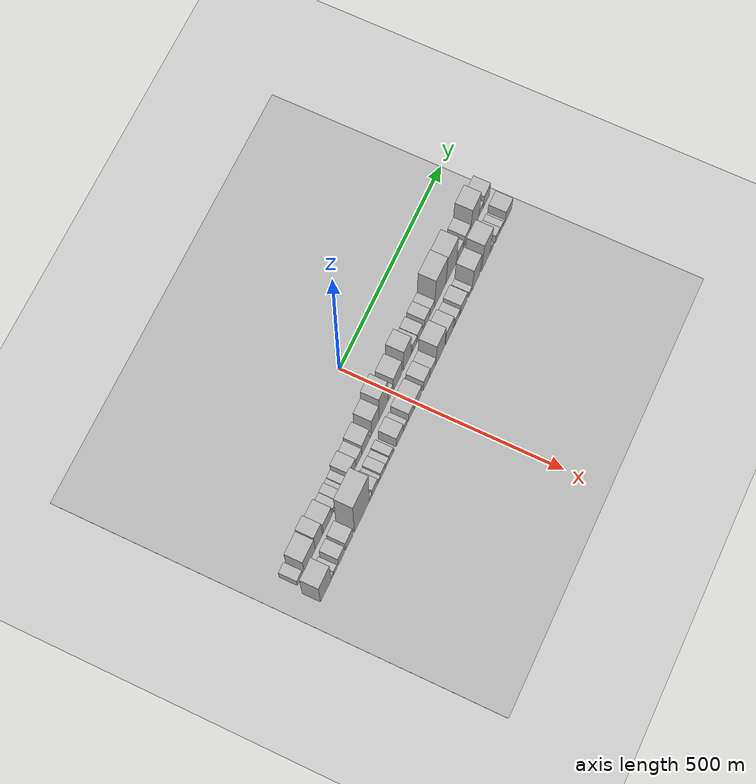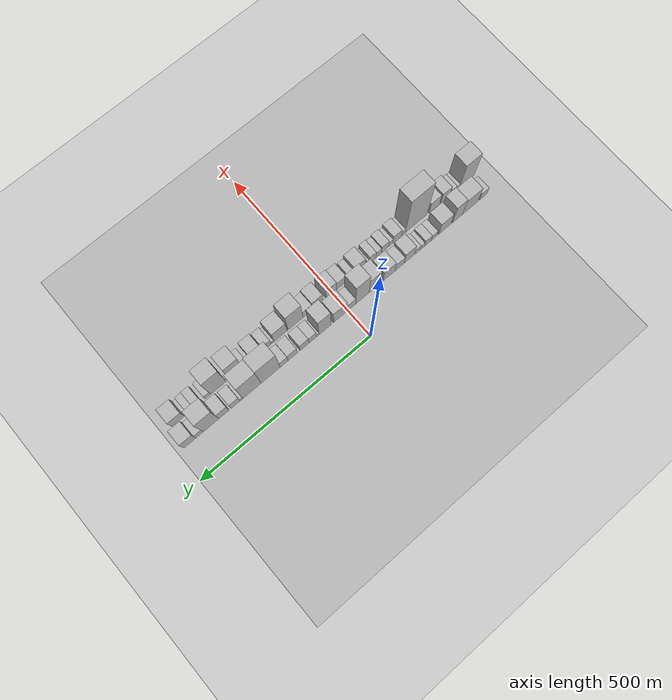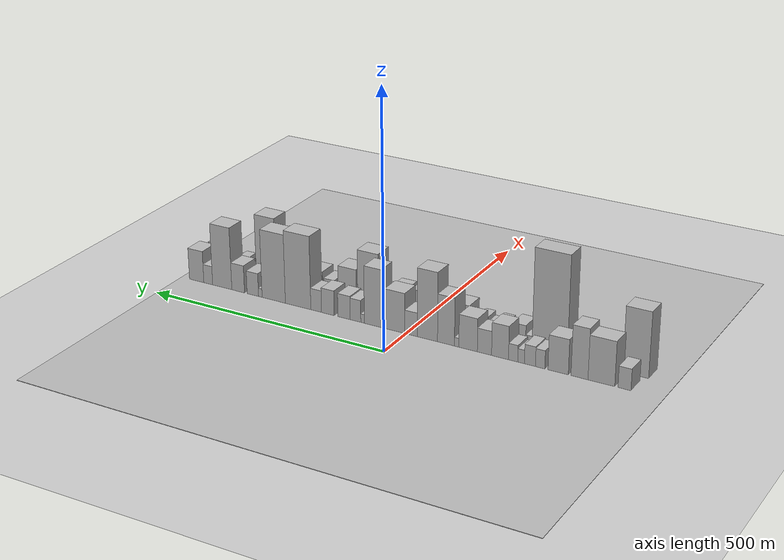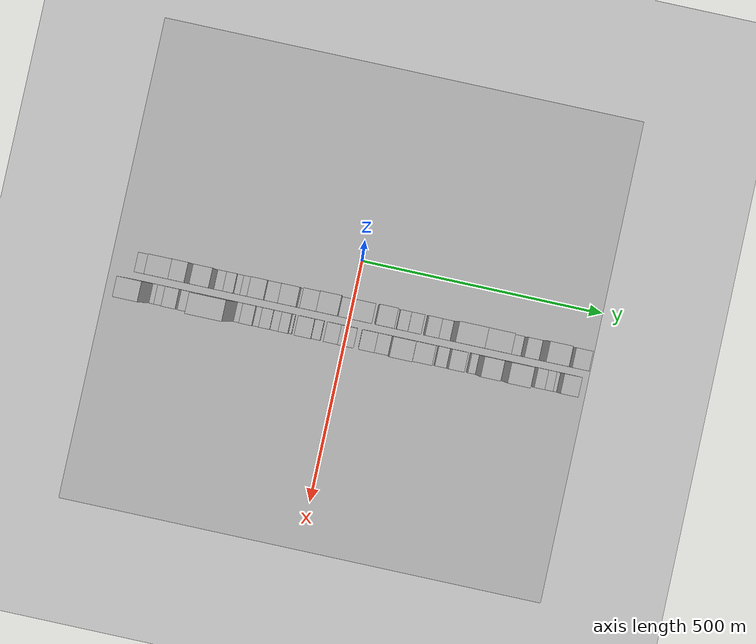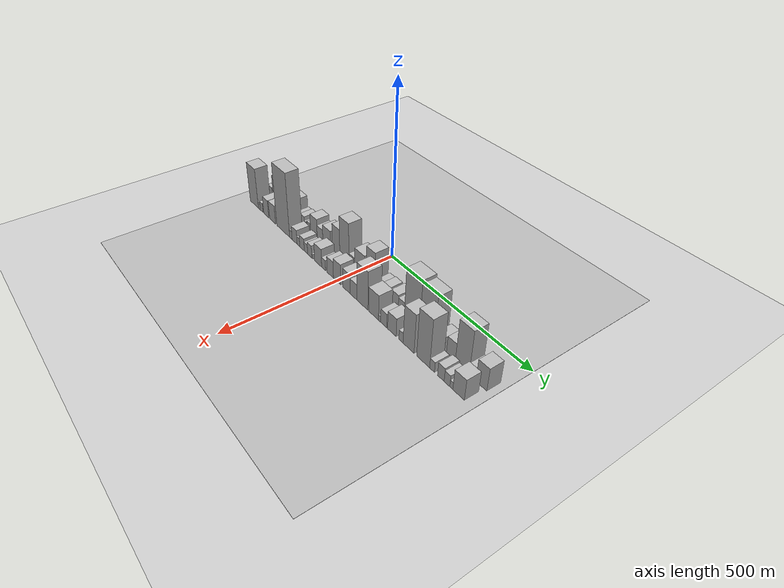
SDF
<sdf version="1.6">
 <world name="default">
  <include><name>ground_plane_1</name><uri>model://HANNAS_ground_plane</uri></include>
  <include>
   <name>ground_plane_2</name>
   <uri>model://HANNAS_ground_plane</uri>
   <pose>100 0 0  0 0 0</pose>
  </include>
  <model name="building_1">
   <static>1</static>
   <pose>100.0000 -428.0679 0 0.000000 0.000000 0.000000</pose>
   <link name="link">
    <pose>0 0 21.00 0 0 0</pose>
    <collision name="collision"><geometry><box><size>40.0000 23.8642 42.0000</size></box></geometry></collision>
    <visual name="visual">
     <cast_shadows>0</cast_shadows>
     <geometry><box><size>40.0000 23.8642 42.0000</size></box></geometry>
     <material>
      <script>
       <uri>model://HANNAS_wall/materials/scripts</uri>
       <uri>model://HANNAS_wall/materials/textures</uri>
       <name>vrc/HANNAS_wall</name>
      </script>
     </material>
    </visual>
   </link>
  </model>
  <model name="building_2">
   <static>1</static>
   <pose>100.0000 -385.1828 0 0.000000 0.000000 0.000000</pose>
   <link name="link">
    <pose>0 0 43.50 0 0 0</pose>
    <collision name="collision"><geometry><box><size>40.0000 49.9060 87.0000</size></box></geometry></collision>
    <visual name="visual">
     <cast_shadows>0</cast_shadows>
     <geometry><box><size>40.0000 49.9060 87.0000</size></box></geometry>
     <material>
      <script>
       <uri>model://HANNAS_wall/materials/scripts</uri>
       <uri>model://HANNAS_wall/materials/textures</uri>
       <name>vrc/HANNAS_wall</name>
      </script>
     </material>
    </visual>
   </link>
  </model>
  <model name="building_3">
   <static>1</static>
   <pose>100.0000 -344.1812 0 0.000000 0.000000 0.000000</pose>
   <link name="link">
    <pose>0 0 49.50 0 0 0</pose>
    <collision name="collision"><geometry><box><size>40.0000 32.0972 99.0000</size></box></geometry></collision>
    <visual name="visual">
     <cast_shadows>0</cast_shadows>
     <geometry><box><size>40.0000 32.0972 99.0000</size></box></geometry>
     <material>
      <script>
       <uri>model://HANNAS_wall/materials/scripts</uri>
       <uri>model://HANNAS_wall/materials/textures</uri>
       <name>vrc/HANNAS_wall</name>
      </script>
     </material>
    </visual>
   </link>
  </model>
  <model name="building_4">
   <static>1</static>
   <pose>100.0000 -303.6838 0 0.000000 0.000000 0.000000</pose>
   <link name="link">
    <pose>0 0 34.50 0 0 0</pose>
    <collision name="collision"><geometry><box><size>40.0000 38.8975 69.0000</size></box></geometry></collision>
    <visual name="visual">
     <cast_shadows>0</cast_shadows>
     <geometry><box><size>40.0000 38.8975 69.0000</size></box></geometry>
     <material>
      <script>
       <uri>model://HANNAS_wall/materials/scripts</uri>
       <uri>model://HANNAS_wall/materials/textures</uri>
       <name>vrc/HANNAS_wall</name>
      </script>
     </material>
    </visual>
   </link>
  </model>
  <model name="building_5">
   <static>1</static>
   <pose>100.0000 -269.1361 0 0.000000 0.000000 0.000000</pose>
   <link name="link">
    <pose>0 0 18.00 0 0 0</pose>
    <collision name="collision"><geometry><box><size>40.0000 18.1979 36.0000</size></box></geometry></collision>
    <visual name="visual">
     <cast_shadows>0</cast_shadows>
     <geometry><box><size>40.0000 18.1979 36.0000</size></box></geometry>
     <material>
      <script>
       <uri>model://HANNAS_wall/materials/scripts</uri>
       <uri>model://HANNAS_wall/materials/textures</uri>
       <name>vrc/HANNAS_wall</name>
      </script>
     </material>
    </visual>
   </link>
  </model>
  <model name="building_6">
   <static>1</static>
   <pose>100.0000 -249.3379 0 0.000000 0.000000 0.000000</pose>
   <link name="link">
    <pose>0 0 19.50 0 0 0</pose>
    <collision name="collision"><geometry><box><size>40.0000 21.3986 39.0000</size></box></geometry></collision>
    <visual name="visual">
     <cast_shadows>0</cast_shadows>
     <geometry><box><size>40.0000 21.3986 39.0000</size></box></geometry>
     <material>
      <script>
       <uri>model://HANNAS_wall/materials/scripts</uri>
       <uri>model://HANNAS_wall/materials/textures</uri>
       <name>vrc/HANNAS_wall</name>
      </script>
     </material>
    </visual>
   </link>
  </model>
  <model name="building_7">
   <static>1</static>
   <pose>100.0000 -232.1086 0 0.000000 0.000000 0.000000</pose>
   <link name="link">
    <pose>0 0 13.50 0 0 0</pose>
    <collision name="collision"><geometry><box><size>40.0000 13.0601 27.0000</size></box></geometry></collision>
    <visual name="visual">
     <cast_shadows>0</cast_shadows>
     <geometry><box><size>40.0000 13.0601 27.0000</size></box></geometry>
     <material>
      <script>
       <uri>model://HANNAS_wall/materials/scripts</uri>
       <uri>model://HANNAS_wall/materials/textures</uri>
       <name>vrc/HANNAS_wall</name>
      </script>
     </material>
    </visual>
   </link>
  </model>
  <model name="building_8">
   <static>1</static>
   <pose>100.0000 -216.5394 0 0.000000 0.000000 0.000000</pose>
   <link name="link">
    <pose>0 0 16.50 0 0 0</pose>
    <collision name="collision"><geometry><box><size>40.0000 18.0782 33.0000</size></box></geometry></collision>
    <visual name="visual">
     <cast_shadows>0</cast_shadows>
     <geometry><box><size>40.0000 18.0782 33.0000</size></box></geometry>
     <material>
      <script>
       <uri>model://HANNAS_wall/materials/scripts</uri>
       <uri>model://HANNAS_wall/materials/textures</uri>
       <name>vrc/HANNAS_wall</name>
      </script>
     </material>
    </visual>
   </link>
  </model>
  <model name="building_9">
   <static>1</static>
   <pose>100.0000 -190.8295 0 0.000000 0.000000 0.000000</pose>
   <link name="link">
    <pose>0 0 33.00 0 0 0</pose>
    <collision name="collision"><geometry><box><size>40.0000 33.3417 66.0000</size></box></geometry></collision>
    <visual name="visual">
     <cast_shadows>0</cast_shadows>
     <geometry><box><size>40.0000 33.3417 66.0000</size></box></geometry>
     <material>
      <script>
       <uri>model://HANNAS_wall/materials/scripts</uri>
       <uri>model://HANNAS_wall/materials/textures</uri>
       <name>vrc/HANNAS_wall</name>
      </script>
     </material>
    </visual>
   </link>
  </model>
  <model name="building_10">
   <static>1</static>
   <pose>100.0000 -159.9764 0 0.000000 0.000000 0.000000</pose>
   <link name="link">
    <pose>0 0 24.00 0 0 0</pose>
    <collision name="collision"><geometry><box><size>40.0000 28.3645 48.0000</size></box></geometry></collision>
    <visual name="visual">
     <cast_shadows>0</cast_shadows>
     <geometry><box><size>40.0000 28.3645 48.0000</size></box></geometry>
     <material>
      <script>
       <uri>model://HANNAS_wall/materials/scripts</uri>
       <uri>model://HANNAS_wall/materials/textures</uri>
       <name>vrc/HANNAS_wall</name>
      </script>
     </material>
    </visual>
   </link>
  </model>
  <model name="building_11">
   <static>1</static>
   <pose>100.0000 -127.2238 0 0.000000 0.000000 0.000000</pose>
   <link name="link">
    <pose>0 0 33.00 0 0 0</pose>
    <collision name="collision"><geometry><box><size>40.0000 37.1406 66.0000</size></box></geometry></collision>
    <visual name="visual">
     <cast_shadows>0</cast_shadows>
     <geometry><box><size>40.0000 37.1406 66.0000</size></box></geometry>
     <material>
      <script>
       <uri>model://HANNAS_wall/materials/scripts</uri>
       <uri>model://HANNAS_wall/materials/textures</uri>
       <name>vrc/HANNAS_wall</name>
      </script>
     </material>
    </visual>
   </link>
  </model>
  <model name="building_12">
   <static>1</static>
   <pose>100.0000 -104.2451 0 0.000000 0.000000 0.000000</pose>
   <link name="link">
    <pose>0 0 9.00 0 0 0</pose>
    <collision name="collision"><geometry><box><size>40.0000 8.8168 18.0000</size></box></geometry></collision>
    <visual name="visual">
     <cast_shadows>0</cast_shadows>
     <geometry><box><size>40.0000 8.8168 18.0000</size></box></geometry>
     <material>
      <script>
       <uri>model://HANNAS_wall/materials/scripts</uri>
       <uri>model://HANNAS_wall/materials/textures</uri>
       <name>vrc/HANNAS_wall</name>
      </script>
     </material>
    </visual>
   </link>
  </model>
  <model name="building_13">
   <static>1</static>
   <pose>100.0000 -82.5706 0 0.000000 0.000000 0.000000</pose>
   <link name="link">
    <pose>0 0 48.00 0 0 0</pose>
    <collision name="collision"><geometry><box><size>40.0000 34.5321 96.0000</size></box></geometry></collision>
    <visual name="visual">
     <cast_shadows>0</cast_shadows>
     <geometry><box><size>40.0000 34.5321 96.0000</size></box></geometry>
     <material>
      <script>
       <uri>model://HANNAS_wall/materials/scripts</uri>
       <uri>model://HANNAS_wall/materials/textures</uri>
       <name>vrc/HANNAS_wall</name>
      </script>
     </material>
    </visual>
   </link>
  </model>
  <model name="building_14">
   <static>1</static>
   <pose>100.0000 -44.4450 0 0.000000 0.000000 0.000000</pose>
   <link name="link">
    <pose>0 0 69.00 0 0 0</pose>
    <collision name="collision"><geometry><box><size>40.0000 41.7192 138.0000</size></box></geometry></collision>
    <visual name="visual">
     <cast_shadows>0</cast_shadows>
     <geometry><box><size>40.0000 41.7192 138.0000</size></box></geometry>
     <material>
      <script>
       <uri>model://HANNAS_wall/materials/scripts</uri>
       <uri>model://HANNAS_wall/materials/textures</uri>
       <name>vrc/HANNAS_wall</name>
      </script>
     </material>
    </visual>
   </link>
  </model>
  <model name="building_15">
   <static>1</static>
   <pose>100.0000 -10.7258 0 0.000000 0.000000 0.000000</pose>
   <link name="link">
    <pose>0 0 24.00 0 0 0</pose>
    <collision name="collision"><geometry><box><size>40.0000 25.7191 48.0000</size></box></geometry></collision>
    <visual name="visual">
     <cast_shadows>0</cast_shadows>
     <geometry><box><size>40.0000 25.7191 48.0000</size></box></geometry>
     <material>
      <script>
       <uri>model://HANNAS_wall/materials/scripts</uri>
       <uri>model://HANNAS_wall/materials/textures</uri>
       <name>vrc/HANNAS_wall</name>
      </script>
     </material>
    </visual>
   </link>
  </model>
  <model name="building_16">
   <static>1</static>
   <pose>100.0000 23.0376 0 0.000000 0.000000 0.000000</pose>
   <link name="link">
    <pose>0 0 40.50 0 0 0</pose>
    <collision name="collision"><geometry><box><size>40.0000 41.8078 81.0000</size></box></geometry></collision>
    <visual name="visual">
     <cast_shadows>0</cast_shadows>
     <geometry><box><size>40.0000 41.8078 81.0000</size></box></geometry>
     <material>
      <script>
       <uri>model://HANNAS_wall/materials/scripts</uri>
       <uri>model://HANNAS_wall/materials/textures</uri>
       <name>vrc/HANNAS_wall</name>
      </script>
     </material>
    </visual>
   </link>
  </model>
  <model name="building_17">
   <static>1</static>
   <pose>100.0000 69.2040 0 0.000000 0.000000 0.000000</pose>
   <link name="link">
    <pose>0 0 58.50 0 0 0</pose>
    <collision name="collision"><geometry><box><size>40.0000 36.5250 117.0000</size></box></geometry></collision>
    <visual name="visual">
     <cast_shadows>0</cast_shadows>
     <geometry><box><size>40.0000 36.5250 117.0000</size></box></geometry>
     <material>
      <script>
       <uri>model://HANNAS_wall/materials/scripts</uri>
       <uri>model://HANNAS_wall/materials/textures</uri>
       <name>vrc/HANNAS_wall</name>
      </script>
     </material>
    </visual>
   </link>
  </model>
  <model name="building_18">
   <static>1</static>
   <pose>100.0000 91.3263 0 0.000000 0.000000 0.000000</pose>
   <link name="link">
    <pose>0 0 9.00 0 0 0</pose>
    <collision name="collision"><geometry><box><size>40.0000 7.7197 18.0000</size></box></geometry></collision>
    <visual name="visual">
     <cast_shadows>0</cast_shadows>
     <geometry><box><size>40.0000 7.7197 18.0000</size></box></geometry>
     <material>
      <script>
       <uri>model://HANNAS_wall/materials/scripts</uri>
       <uri>model://HANNAS_wall/materials/textures</uri>
       <name>vrc/HANNAS_wall</name>
      </script>
     </material>
    </visual>
   </link>
  </model>
  <model name="building_19">
   <static>1</static>
   <pose>100.0000 106.5233 0 0.000000 0.000000 0.000000</pose>
   <link name="link">
    <pose>0 0 22.50 0 0 0</pose>
    <collision name="collision"><geometry><box><size>40.0000 22.6743 45.0000</size></box></geometry></collision>
    <visual name="visual">
     <cast_shadows>0</cast_shadows>
     <geometry><box><size>40.0000 22.6743 45.0000</size></box></geometry>
     <material>
      <script>
       <uri>model://HANNAS_wall/materials/scripts</uri>
       <uri>model://HANNAS_wall/materials/textures</uri>
       <name>vrc/HANNAS_wall</name>
      </script>
     </material>
    </visual>
   </link>
  </model>
  <model name="building_20">
   <static>1</static>
   <pose>100.0000 131.1796 0 0.000000 0.000000 0.000000</pose>
   <link name="link">
    <pose>0 0 24.00 0 0 0</pose>
    <collision name="collision"><geometry><box><size>40.0000 26.6383 48.0000</size></box></geometry></collision>
    <visual name="visual">
     <cast_shadows>0</cast_shadows>
     <geometry><box><size>40.0000 26.6383 48.0000</size></box></geometry>
     <material>
      <script>
       <uri>model://HANNAS_wall/materials/scripts</uri>
       <uri>model://HANNAS_wall/materials/textures</uri>
       <name>vrc/HANNAS_wall</name>
      </script>
     </material>
    </visual>
   </link>
  </model>
  <model name="building_21">
   <static>1</static>
   <pose>100.0000 166.3800 0 0.000000 0.000000 0.000000</pose>
   <link name="link">
    <pose>0 0 25.50 0 0 0</pose>
    <collision name="collision"><geometry><box><size>40.0000 27.7625 51.0000</size></box></geometry></collision>
    <visual name="visual">
     <cast_shadows>0</cast_shadows>
     <geometry><box><size>40.0000 27.7625 51.0000</size></box></geometry>
     <material>
      <script>
       <uri>model://HANNAS_wall/materials/scripts</uri>
       <uri>model://HANNAS_wall/materials/textures</uri>
       <name>vrc/HANNAS_wall</name>
      </script>
     </material>
    </visual>
   </link>
  </model>
  <model name="building_22">
   <static>1</static>
   <pose>100.0000 191.9842 0 0.000000 0.000000 0.000000</pose>
   <link name="link">
    <pose>0 0 22.50 0 0 0</pose>
    <collision name="collision"><geometry><box><size>40.0000 23.4460 45.0000</size></box></geometry></collision>
    <visual name="visual">
     <cast_shadows>0</cast_shadows>
     <geometry><box><size>40.0000 23.4460 45.0000</size></box></geometry>
     <material>
      <script>
       <uri>model://HANNAS_wall/materials/scripts</uri>
       <uri>model://HANNAS_wall/materials/textures</uri>
       <name>vrc/HANNAS_wall</name>
      </script>
     </material>
    </visual>
   </link>
  </model>
  <model name="building_23">
   <static>1</static>
   <pose>100.0000 231.9774 0 0.000000 0.000000 0.000000</pose>
   <link name="link">
    <pose>0 0 75.00 0 0 0</pose>
    <collision name="collision"><geometry><box><size>40.0000 56.5404 150.0000</size></box></geometry></collision>
    <visual name="visual">
     <cast_shadows>0</cast_shadows>
     <geometry><box><size>40.0000 56.5404 150.0000</size></box></geometry>
     <material>
      <script>
       <uri>model://HANNAS_wall/materials/scripts</uri>
       <uri>model://HANNAS_wall/materials/textures</uri>
       <name>vrc/HANNAS_wall</name>
      </script>
     </material>
    </visual>
   </link>
  </model>
  <model name="building_24">
   <static>1</static>
   <pose>100.0000 286.4986 0 0.000000 0.000000 0.000000</pose>
   <link name="link">
    <pose>0 0 70.50 0 0 0</pose>
    <collision name="collision"><geometry><box><size>40.0000 52.5019 141.0000</size></box></geometry></collision>
    <visual name="visual">
     <cast_shadows>0</cast_shadows>
     <geometry><box><size>40.0000 52.5019 141.0000</size></box></geometry>
     <material>
      <script>
       <uri>model://HANNAS_wall/materials/scripts</uri>
       <uri>model://HANNAS_wall/materials/textures</uri>
       <name>vrc/HANNAS_wall</name>
      </script>
     </material>
    </visual>
   </link>
  </model>
  <model name="building_25">
   <static>1</static>
   <pose>100.0000 316.8146 0 0.000000 0.000000 0.000000</pose>
   <link name="link">
    <pose>0 0 9.00 0 0 0</pose>
    <collision name="collision"><geometry><box><size>40.0000 8.1301 18.0000</size></box></geometry></collision>
    <visual name="visual">
     <cast_shadows>0</cast_shadows>
     <geometry><box><size>40.0000 8.1301 18.0000</size></box></geometry>
     <material>
      <script>
       <uri>model://HANNAS_wall/materials/scripts</uri>
       <uri>model://HANNAS_wall/materials/textures</uri>
       <name>vrc/HANNAS_wall</name>
      </script>
     </material>
    </visual>
   </link>
  </model>
  <model name="building_26">
   <static>1</static>
   <pose>100.0000 333.9260 0 0.000000 0.000000 0.000000</pose>
   <link name="link">
    <pose>0 0 24.00 0 0 0</pose>
    <collision name="collision"><geometry><box><size>40.0000 26.0927 48.0000</size></box></geometry></collision>
    <visual name="visual">
     <cast_shadows>0</cast_shadows>
     <geometry><box><size>40.0000 26.0927 48.0000</size></box></geometry>
     <material>
      <script>
       <uri>model://HANNAS_wall/materials/scripts</uri>
       <uri>model://HANNAS_wall/materials/textures</uri>
       <name>vrc/HANNAS_wall</name>
      </script>
     </material>
    </visual>
   </link>
  </model>
  <model name="building_27">
   <static>1</static>
   <pose>100.0000 367.5840 0 0.000000 0.000000 0.000000</pose>
   <link name="link">
    <pose>0 0 28.50 0 0 0</pose>
    <collision name="collision"><geometry><box><size>40.0000 29.2233 57.0000</size></box></geometry></collision>
    <visual name="visual">
     <cast_shadows>0</cast_shadows>
     <geometry><box><size>40.0000 29.2233 57.0000</size></box></geometry>
     <material>
      <script>
       <uri>model://HANNAS_wall/materials/scripts</uri>
       <uri>model://HANNAS_wall/materials/textures</uri>
       <name>vrc/HANNAS_wall</name>
      </script>
     </material>
    </visual>
   </link>
  </model>
  <model name="building_28">
   <static>1</static>
   <pose>100.0000 404.5160 0 0.000000 0.000000 0.000000</pose>
   <link name="link">
    <pose>0 0 64.50 0 0 0</pose>
    <collision name="collision"><geometry><box><size>40.0000 44.6407 129.0000</size></box></geometry></collision>
    <visual name="visual">
     <cast_shadows>0</cast_shadows>
     <geometry><box><size>40.0000 44.6407 129.0000</size></box></geometry>
     <material>
      <script>
       <uri>model://HANNAS_wall/materials/scripts</uri>
       <uri>model://HANNAS_wall/materials/textures</uri>
       <name>vrc/HANNAS_wall</name>
      </script>
     </material>
    </visual>
   </link>
  </model>
  <model name="building_29">
   <static>1</static>
   <pose>100.0000 437.1853 0 0.000000 0.000000 0.000000</pose>
   <link name="link">
    <pose>0 0 19.50 0 0 0</pose>
    <collision name="collision"><geometry><box><size>40.0000 20.6978 39.0000</size></box></geometry></collision>
    <visual name="visual">
     <cast_shadows>0</cast_shadows>
     <geometry><box><size>40.0000 20.6978 39.0000</size></box></geometry>
     <material>
      <script>
       <uri>model://HANNAS_wall/materials/scripts</uri>
       <uri>model://HANNAS_wall/materials/textures</uri>
       <name>vrc/HANNAS_wall</name>
      </script>
     </material>
    </visual>
   </link>
  </model>
  <model name="building_30">
   <static>1</static>
   <pose>100.0000 464.4592 0 0.000000 0.000000 0.000000</pose>
   <link name="link">
    <pose>0 0 33.00 0 0 0</pose>
    <collision name="collision"><geometry><box><size>40.0000 33.8500 66.0000</size></box></geometry></collision>
    <visual name="visual">
     <cast_shadows>0</cast_shadows>
     <geometry><box><size>40.0000 33.8500 66.0000</size></box></geometry>
     <material>
      <script>
       <uri>model://HANNAS_wall/materials/scripts</uri>
       <uri>model://HANNAS_wall/materials/textures</uri>
       <name>vrc/HANNAS_wall</name>
      </script>
     </material>
    </visual>
   </link>
  </model>
  <model name="building_31">
   <static>1</static>
   <pose>155.0000 -425.7676 0 0.000000 0.000000 0.000000</pose>
   <link name="link">
    <pose>0 0 64.50 0 0 0</pose>
    <collision name="collision"><geometry><box><size>40.0000 48.4648 129.0000</size></box></geometry></collision>
    <visual name="visual">
     <cast_shadows>0</cast_shadows>
     <geometry><box><size>40.0000 48.4648 129.0000</size></box></geometry>
     <material>
      <script>
       <uri>model://HANNAS_wall/materials/scripts</uri>
       <uri>model://HANNAS_wall/materials/textures</uri>
       <name>vrc/HANNAS_wall</name>
      </script>
     </material>
    </visual>
   </link>
  </model>
  <model name="building_32">
   <static>1</static>
   <pose>155.0000 -396.0954 0 0.000000 0.000000 0.000000</pose>
   <link name="link">
    <pose>0 0 12.00 0 0 0</pose>
    <collision name="collision"><geometry><box><size>40.0000 10.8796 24.0000</size></box></geometry></collision>
    <visual name="visual">
     <cast_shadows>0</cast_shadows>
     <geometry><box><size>40.0000 10.8796 24.0000</size></box></geometry>
     <material>
      <script>
       <uri>model://HANNAS_wall/materials/scripts</uri>
       <uri>model://HANNAS_wall/materials/textures</uri>
       <name>vrc/HANNAS_wall</name>
      </script>
     </material>
    </visual>
   </link>
  </model>
  <model name="building_33">
   <static>1</static>
   <pose>155.0000 -382.8554 0 0.000000 0.000000 0.000000</pose>
   <link name="link">
    <pose>0 0 15.00 0 0 0</pose>
    <collision name="collision"><geometry><box><size>40.0000 15.6004 30.0000</size></box></geometry></collision>
    <visual name="visual">
     <cast_shadows>0</cast_shadows>
     <geometry><box><size>40.0000 15.6004 30.0000</size></box></geometry>
     <material>
      <script>
       <uri>model://HANNAS_wall/materials/scripts</uri>
       <uri>model://HANNAS_wall/materials/textures</uri>
       <name>vrc/HANNAS_wall</name>
      </script>
     </material>
    </visual>
   </link>
  </model>
  <model name="building_34">
   <static>1</static>
   <pose>155.0000 -355.7800 0 0.000000 0.000000 0.000000</pose>
   <link name="link">
    <pose>0 0 28.50 0 0 0</pose>
    <collision name="collision"><geometry><box><size>40.0000 28.5504 57.0000</size></box></geometry></collision>
    <visual name="visual">
     <cast_shadows>0</cast_shadows>
     <geometry><box><size>40.0000 28.5504 57.0000</size></box></geometry>
     <material>
      <script>
       <uri>model://HANNAS_wall/materials/scripts</uri>
       <uri>model://HANNAS_wall/materials/textures</uri>
       <name>vrc/HANNAS_wall</name>
      </script>
     </material>
    </visual>
   </link>
  </model>
  <model name="building_35">
   <static>1</static>
   <pose>155.0000 -319.8445 0 0.000000 0.000000 0.000000</pose>
   <link name="link">
    <pose>0 0 30.00 0 0 0</pose>
    <collision name="collision"><geometry><box><size>40.0000 33.3207 60.0000</size></box></geometry></collision>
    <visual name="visual">
     <cast_shadows>0</cast_shadows>
     <geometry><box><size>40.0000 33.3207 60.0000</size></box></geometry>
     <material>
      <script>
       <uri>model://HANNAS_wall/materials/scripts</uri>
       <uri>model://HANNAS_wall/materials/textures</uri>
       <name>vrc/HANNAS_wall</name>
      </script>
     </material>
    </visual>
   </link>
  </model>
  <model name="building_36">
   <static>1</static>
   <pose>155.0000 -261.6093 0 0.000000 0.000000 0.000000</pose>
   <link name="link">
    <pose>0 0 100.50 0 0 0</pose>
    <collision name="collision"><geometry><box><size>40.0000 69.1498 201.0000</size></box></geometry></collision>
    <visual name="visual">
     <cast_shadows>0</cast_shadows>
     <geometry><box><size>40.0000 69.1498 201.0000</size></box></geometry>
     <material>
      <script>
       <uri>model://HANNAS_wall/materials/scripts</uri>
       <uri>model://HANNAS_wall/materials/textures</uri>
       <name>vrc/HANNAS_wall</name>
      </script>
     </material>
    </visual>
   </link>
  </model>
  <model name="building_37">
   <static>1</static>
   <pose>155.0000 -220.6305 0 0.000000 0.000000 0.000000</pose>
   <link name="link">
    <pose>0 0 13.50 0 0 0</pose>
    <collision name="collision"><geometry><box><size>40.0000 12.8077 27.0000</size></box></geometry></collision>
    <visual name="visual">
     <cast_shadows>0</cast_shadows>
     <geometry><box><size>40.0000 12.8077 27.0000</size></box></geometry>
     <material>
      <script>
       <uri>model://HANNAS_wall/materials/scripts</uri>
       <uri>model://HANNAS_wall/materials/textures</uri>
       <name>vrc/HANNAS_wall</name>
      </script>
     </material>
    </visual>
   </link>
  </model>
  <model name="building_38">
   <static>1</static>
   <pose>155.0000 -201.0322 0 0.000000 0.000000 0.000000</pose>
   <link name="link">
    <pose>0 0 22.50 0 0 0</pose>
    <collision name="collision"><geometry><box><size>40.0000 26.3891 45.0000</size></box></geometry></collision>
    <visual name="visual">
     <cast_shadows>0</cast_shadows>
     <geometry><box><size>40.0000 26.3891 45.0000</size></box></geometry>
     <material>
      <script>
       <uri>model://HANNAS_wall/materials/scripts</uri>
       <uri>model://HANNAS_wall/materials/textures</uri>
       <name>vrc/HANNAS_wall</name>
      </script>
     </material>
    </visual>
   </link>
  </model>
  <model name="building_39">
   <static>1</static>
   <pose>155.0000 -181.2598 0 0.000000 0.000000 0.000000</pose>
   <link name="link">
    <pose>0 0 13.50 0 0 0</pose>
    <collision name="collision"><geometry><box><size>40.0000 13.1557 27.0000</size></box></geometry></collision>
    <visual name="visual">
     <cast_shadows>0</cast_shadows>
     <geometry><box><size>40.0000 13.1557 27.0000</size></box></geometry>
     <material>
      <script>
       <uri>model://HANNAS_wall/materials/scripts</uri>
       <uri>model://HANNAS_wall/materials/textures</uri>
       <name>vrc/HANNAS_wall</name>
      </script>
     </material>
    </visual>
   </link>
  </model>
  <model name="building_40">
   <static>1</static>
   <pose>155.0000 -163.2236 0 0.000000 0.000000 0.000000</pose>
   <link name="link">
    <pose>0 0 19.50 0 0 0</pose>
    <collision name="collision"><geometry><box><size>40.0000 22.9167 39.0000</size></box></geometry></collision>
    <visual name="visual">
     <cast_shadows>0</cast_shadows>
     <geometry><box><size>40.0000 22.9167 39.0000</size></box></geometry>
     <material>
      <script>
       <uri>model://HANNAS_wall/materials/scripts</uri>
       <uri>model://HANNAS_wall/materials/textures</uri>
       <name>vrc/HANNAS_wall</name>
      </script>
     </material>
    </visual>
   </link>
  </model>
  <model name="building_41">
   <static>1</static>
   <pose>155.0000 -143.2738 0 0.000000 0.000000 0.000000</pose>
   <link name="link">
    <pose>0 0 15.00 0 0 0</pose>
    <collision name="collision"><geometry><box><size>40.0000 16.9828 30.0000</size></box></geometry></collision>
    <visual name="visual">
     <cast_shadows>0</cast_shadows>
     <geometry><box><size>40.0000 16.9828 30.0000</size></box></geometry>
     <material>
      <script>
       <uri>model://HANNAS_wall/materials/scripts</uri>
       <uri>model://HANNAS_wall/materials/textures</uri>
       <name>vrc/HANNAS_wall</name>
      </script>
     </material>
    </visual>
   </link>
  </model>
  <model name="building_42">
   <static>1</static>
   <pose>155.0000 -124.7985 0 0.000000 0.000000 0.000000</pose>
   <link name="link">
    <pose>0 0 19.50 0 0 0</pose>
    <collision name="collision"><geometry><box><size>40.0000 19.9679 39.0000</size></box></geometry></collision>
    <visual name="visual">
     <cast_shadows>0</cast_shadows>
     <geometry><box><size>40.0000 19.9679 39.0000</size></box></geometry>
     <material>
      <script>
       <uri>model://HANNAS_wall/materials/scripts</uri>
       <uri>model://HANNAS_wall/materials/textures</uri>
       <name>vrc/HANNAS_wall</name>
      </script>
     </material>
    </visual>
   </link>
  </model>
  <model name="building_43">
   <static>1</static>
   <pose>155.0000 -111.8006 0 0.000000 0.000000 0.000000</pose>
   <link name="link">
    <pose>0 0 7.50 0 0 0</pose>
    <collision name="collision"><geometry><box><size>40.0000 6.0279 15.0000</size></box></geometry></collision>
    <visual name="visual">
     <cast_shadows>0</cast_shadows>
     <geometry><box><size>40.0000 6.0279 15.0000</size></box></geometry>
     <material>
      <script>
       <uri>model://HANNAS_wall/materials/scripts</uri>
       <uri>model://HANNAS_wall/materials/textures</uri>
       <name>vrc/HANNAS_wall</name>
      </script>
     </material>
    </visual>
   </link>
  </model>
  <model name="building_44">
   <static>1</static>
   <pose>155.0000 -84.0578 0 0.000000 0.000000 0.000000</pose>
   <link name="link">
    <pose>0 0 28.50 0 0 0</pose>
    <collision name="collision"><geometry><box><size>40.0000 33.4575 57.0000</size></box></geometry></collision>
    <visual name="visual">
     <cast_shadows>0</cast_shadows>
     <geometry><box><size>40.0000 33.4575 57.0000</size></box></geometry>
     <material>
      <script>
       <uri>model://HANNAS_wall/materials/scripts</uri>
       <uri>model://HANNAS_wall/materials/textures</uri>
       <name>vrc/HANNAS_wall</name>
      </script>
     </material>
    </visual>
   </link>
  </model>
  <model name="building_45">
   <static>1</static>
   <pose>155.0000 -58.1853 0 0.000000 0.000000 0.000000</pose>
   <link name="link">
    <pose>0 0 16.50 0 0 0</pose>
    <collision name="collision"><geometry><box><size>40.0000 18.2874 33.0000</size></box></geometry></collision>
    <visual name="visual">
     <cast_shadows>0</cast_shadows>
     <geometry><box><size>40.0000 18.2874 33.0000</size></box></geometry>
     <material>
      <script>
       <uri>model://HANNAS_wall/materials/scripts</uri>
       <uri>model://HANNAS_wall/materials/textures</uri>
       <name>vrc/HANNAS_wall</name>
      </script>
     </material>
    </visual>
   </link>
  </model>
  <model name="building_46">
   <static>1</static>
   <pose>155.0000 -27.5208 0 0.000000 0.000000 0.000000</pose>
   <link name="link">
    <pose>0 0 25.50 0 0 0</pose>
    <collision name="collision"><geometry><box><size>40.0000 29.0417 51.0000</size></box></geometry></collision>
    <visual name="visual">
     <cast_shadows>0</cast_shadows>
     <geometry><box><size>40.0000 29.0417 51.0000</size></box></geometry>
     <material>
      <script>
       <uri>model://HANNAS_wall/materials/scripts</uri>
       <uri>model://HANNAS_wall/materials/textures</uri>
       <name>vrc/HANNAS_wall</name>
      </script>
     </material>
    </visual>
   </link>
  </model>
  <model name="building_47">
   <static>1</static>
   <pose>155.0000 3.1184 0 0.000000 0.000000 0.000000</pose>
   <link name="link">
    <pose>0 0 31.50 0 0 0</pose>
    <collision name="collision"><geometry><box><size>40.0000 32.2367 63.0000</size></box></geometry></collision>
    <visual name="visual">
     <cast_shadows>0</cast_shadows>
     <geometry><box><size>40.0000 32.2367 63.0000</size></box></geometry>
     <material>
      <script>
       <uri>model://HANNAS_wall/materials/scripts</uri>
       <uri>model://HANNAS_wall/materials/textures</uri>
       <name>vrc/HANNAS_wall</name>
      </script>
     </material>
    </visual>
   </link>
  </model>
  <model name="building_48">
   <static>1</static>
   <pose>155.0000 45.2051 0 0.000000 0.000000 0.000000</pose>
   <link name="link">
    <pose>0 0 30.00 0 0 0</pose>
    <collision name="collision"><geometry><box><size>40.0000 31.9367 60.0000</size></box></geometry></collision>
    <visual name="visual">
     <cast_shadows>0</cast_shadows>
     <geometry><box><size>40.0000 31.9367 60.0000</size></box></geometry>
     <material>
      <script>
       <uri>model://HANNAS_wall/materials/scripts</uri>
       <uri>model://HANNAS_wall/materials/textures</uri>
       <name>vrc/HANNAS_wall</name>
      </script>
     </material>
    </visual>
   </link>
  </model>
  <model name="building_49">
   <static>1</static>
   <pose>155.0000 75.3749 0 0.000000 0.000000 0.000000</pose>
   <link name="link">
    <pose>0 0 24.00 0 0 0</pose>
    <collision name="collision"><geometry><box><size>40.0000 28.4029 48.0000</size></box></geometry></collision>
    <visual name="visual">
     <cast_shadows>0</cast_shadows>
     <geometry><box><size>40.0000 28.4029 48.0000</size></box></geometry>
     <material>
      <script>
       <uri>model://HANNAS_wall/materials/scripts</uri>
       <uri>model://HANNAS_wall/materials/textures</uri>
       <name>vrc/HANNAS_wall</name>
      </script>
     </material>
    </visual>
   </link>
  </model>
  <model name="building_50">
   <static>1</static>
   <pose>155.0000 111.9911 0 0.000000 0.000000 0.000000</pose>
   <link name="link">
    <pose>0 0 58.50 0 0 0</pose>
    <collision name="collision"><geometry><box><size>40.0000 44.8294 117.0000</size></box></geometry></collision>
    <visual name="visual">
     <cast_shadows>0</cast_shadows>
     <geometry><box><size>40.0000 44.8294 117.0000</size></box></geometry>
     <material>
      <script>
       <uri>model://HANNAS_wall/materials/scripts</uri>
       <uri>model://HANNAS_wall/materials/textures</uri>
       <name>vrc/HANNAS_wall</name>
      </script>
     </material>
    </visual>
   </link>
  </model>
  <model name="building_51">
   <static>1</static>
   <pose>155.0000 157.1044 0 0.000000 0.000000 0.000000</pose>
   <link name="link">
    <pose>0 0 37.50 0 0 0</pose>
    <collision name="collision"><geometry><box><size>40.0000 39.3972 75.0000</size></box></geometry></collision>
    <visual name="visual">
     <cast_shadows>0</cast_shadows>
     <geometry><box><size>40.0000 39.3972 75.0000</size></box></geometry>
     <material>
      <script>
       <uri>model://HANNAS_wall/materials/scripts</uri>
       <uri>model://HANNAS_wall/materials/textures</uri>
       <name>vrc/HANNAS_wall</name>
      </script>
     </material>
    </visual>
   </link>
  </model>
  <model name="building_52">
   <static>1</static>
   <pose>155.0000 180.9454 0 0.000000 0.000000 0.000000</pose>
   <link name="link">
    <pose>0 0 9.00 0 0 0</pose>
    <collision name="collision"><geometry><box><size>40.0000 8.2849 18.0000</size></box></geometry></collision>
    <visual name="visual">
     <cast_shadows>0</cast_shadows>
     <geometry><box><size>40.0000 8.2849 18.0000</size></box></geometry>
     <material>
      <script>
       <uri>model://HANNAS_wall/materials/scripts</uri>
       <uri>model://HANNAS_wall/materials/textures</uri>
       <name>vrc/HANNAS_wall</name>
      </script>
     </material>
    </visual>
   </link>
  </model>
  <model name="building_53">
   <static>1</static>
   <pose>155.0000 196.7947 0 0.000000 0.000000 0.000000</pose>
   <link name="link">
    <pose>0 0 21.00 0 0 0</pose>
    <collision name="collision"><geometry><box><size>40.0000 23.4139 42.0000</size></box></geometry></collision>
    <visual name="visual">
     <cast_shadows>0</cast_shadows>
     <geometry><box><size>40.0000 23.4139 42.0000</size></box></geometry>
     <material>
      <script>
       <uri>model://HANNAS_wall/materials/scripts</uri>
       <uri>model://HANNAS_wall/materials/textures</uri>
       <name>vrc/HANNAS_wall</name>
      </script>
     </material>
    </visual>
   </link>
  </model>
  <model name="building_54">
   <static>1</static>
   <pose>155.0000 227.6656 0 0.000000 0.000000 0.000000</pose>
   <link name="link">
    <pose>0 0 27.00 0 0 0</pose>
    <collision name="collision"><geometry><box><size>40.0000 32.3279 54.0000</size></box></geometry></collision>
    <visual name="visual">
     <cast_shadows>0</cast_shadows>
     <geometry><box><size>40.0000 32.3279 54.0000</size></box></geometry>
     <material>
      <script>
       <uri>model://HANNAS_wall/materials/scripts</uri>
       <uri>model://HANNAS_wall/materials/textures</uri>
       <name>vrc/HANNAS_wall</name>
      </script>
     </material>
    </visual>
   </link>
  </model>
  <model name="building_55">
   <static>1</static>
   <pose>155.0000 261.3990 0 0.000000 0.000000 0.000000</pose>
   <link name="link">
    <pose>0 0 15.00 0 0 0</pose>
    <collision name="collision"><geometry><box><size>40.0000 15.1389 30.0000</size></box></geometry></collision>
    <visual name="visual">
     <cast_shadows>0</cast_shadows>
     <geometry><box><size>40.0000 15.1389 30.0000</size></box></geometry>
     <material>
      <script>
       <uri>model://HANNAS_wall/materials/scripts</uri>
       <uri>model://HANNAS_wall/materials/textures</uri>
       <name>vrc/HANNAS_wall</name>
      </script>
     </material>
    </visual>
   </link>
  </model>
  <model name="building_56">
   <static>1</static>
   <pose>155.0000 288.6522 0 0.000000 0.000000 0.000000</pose>
   <link name="link">
    <pose>0 0 57.00 0 0 0</pose>
    <collision name="collision"><geometry><box><size>40.0000 39.3675 114.0000</size></box></geometry></collision>
    <visual name="visual">
     <cast_shadows>0</cast_shadows>
     <geometry><box><size>40.0000 39.3675 114.0000</size></box></geometry>
     <material>
      <script>
       <uri>model://HANNAS_wall/materials/scripts</uri>
       <uri>model://HANNAS_wall/materials/textures</uri>
       <name>vrc/HANNAS_wall</name>
      </script>
     </material>
    </visual>
   </link>
  </model>
  <model name="building_57">
   <static>1</static>
   <pose>155.0000 339.6230 0 0.000000 0.000000 0.000000</pose>
   <link name="link">
    <pose>0 0 70.50 0 0 0</pose>
    <collision name="collision"><geometry><box><size>40.0000 44.5740 141.0000</size></box></geometry></collision>
    <visual name="visual">
     <cast_shadows>0</cast_shadows>
     <geometry><box><size>40.0000 44.5740 141.0000</size></box></geometry>
     <material>
      <script>
       <uri>model://HANNAS_wall/materials/scripts</uri>
       <uri>model://HANNAS_wall/materials/textures</uri>
       <name>vrc/HANNAS_wall</name>
      </script>
     </material>
    </visual>
   </link>
  </model>
  <model name="building_58">
   <static>1</static>
   <pose>155.0000 369.9873 0 0.000000 0.000000 0.000000</pose>
   <link name="link">
    <pose>0 0 15.00 0 0 0</pose>
    <collision name="collision"><geometry><box><size>40.0000 16.1546 30.0000</size></box></geometry></collision>
    <visual name="visual">
     <cast_shadows>0</cast_shadows>
     <geometry><box><size>40.0000 16.1546 30.0000</size></box></geometry>
     <material>
      <script>
       <uri>model://HANNAS_wall/materials/scripts</uri>
       <uri>model://HANNAS_wall/materials/textures</uri>
       <name>vrc/HANNAS_wall</name>
      </script>
     </material>
    </visual>
   </link>
  </model>
  <model name="building_59">
   <static>1</static>
   <pose>155.0000 398.7608 0 0.000000 0.000000 0.000000</pose>
   <link name="link">
    <pose>0 0 19.50 0 0 0</pose>
    <collision name="collision"><geometry><box><size>40.0000 21.3923 39.0000</size></box></geometry></collision>
    <visual name="visual">
     <cast_shadows>0</cast_shadows>
     <geometry><box><size>40.0000 21.3923 39.0000</size></box></geometry>
     <material>
      <script>
       <uri>model://HANNAS_wall/materials/scripts</uri>
       <uri>model://HANNAS_wall/materials/textures</uri>
       <name>vrc/HANNAS_wall</name>
      </script>
     </material>
    </visual>
   </link>
  </model>
  <model name="building_60">
   <static>1</static>
   <pose>155.0000 418.5445 0 0.000000 0.000000 0.000000</pose>
   <link name="link">
    <pose>0 0 16.50 0 0 0</pose>
    <collision name="collision"><geometry><box><size>40.0000 18.1752 33.0000</size></box></geometry></collision>
    <visual name="visual">
     <cast_shadows>0</cast_shadows>
     <geometry><box><size>40.0000 18.1752 33.0000</size></box></geometry>
     <material>
      <script>
       <uri>model://HANNAS_wall/materials/scripts</uri>
       <uri>model://HANNAS_wall/materials/textures</uri>
       <name>vrc/HANNAS_wall</name>
      </script>
     </material>
    </visual>
   </link>
  </model>
  <model name="building_61">
   <static>1</static>
   <pose>155.0000 432.3682 0 0.000000 0.000000 0.000000</pose>
   <link name="link">
    <pose>0 0 10.50 0 0 0</pose>
    <collision name="collision"><geometry><box><size>40.0000 9.4722 21.0000</size></box></geometry></collision>
    <visual name="visual">
     <cast_shadows>0</cast_shadows>
     <geometry><box><size>40.0000 9.4722 21.0000</size></box></geometry>
     <material>
      <script>
       <uri>model://HANNAS_wall/materials/scripts</uri>
       <uri>model://HANNAS_wall/materials/textures</uri>
       <name>vrc/HANNAS_wall</name>
      </script>
     </material>
    </visual>
   </link>
  </model>
  <model name="building_62">
   <static>1</static>
   <pose>155.0000 454.9380 0 0.000000 0.000000 0.000000</pose>
   <link name="link">
    <pose>0 0 30.00 0 0 0</pose>
    <collision name="collision"><geometry><box><size>40.0000 35.6672 60.0000</size></box></geometry></collision>
    <visual name="visual">
     <cast_shadows>0</cast_shadows>
     <geometry><box><size>40.0000 35.6672 60.0000</size></box></geometry>
     <material>
      <script>
       <uri>model://HANNAS_wall/materials/scripts</uri>
       <uri>model://HANNAS_wall/materials/textures</uri>
       <name>vrc/HANNAS_wall</name>
      </script>
     </material>
    </visual>
   </link>
  </model>
 </world>
</sdf>
